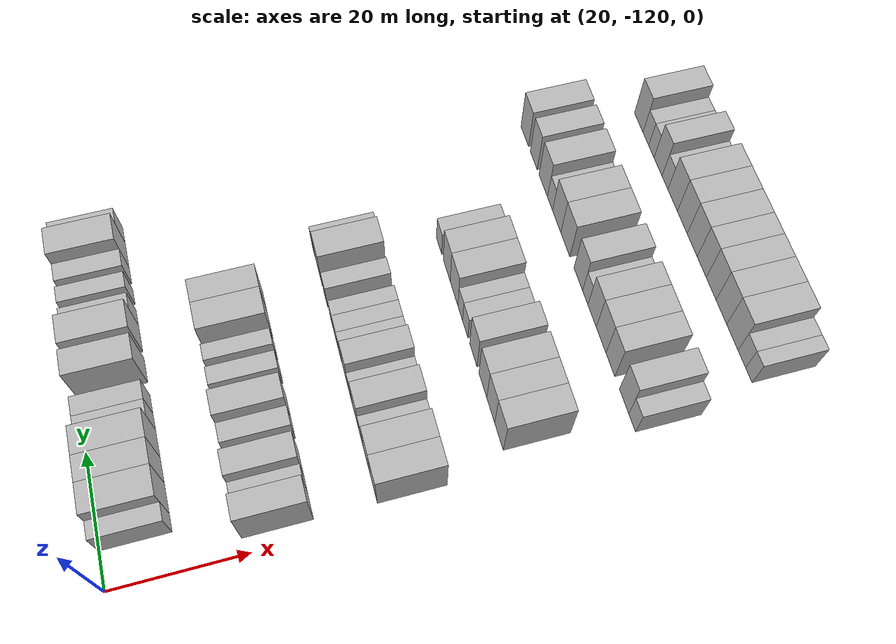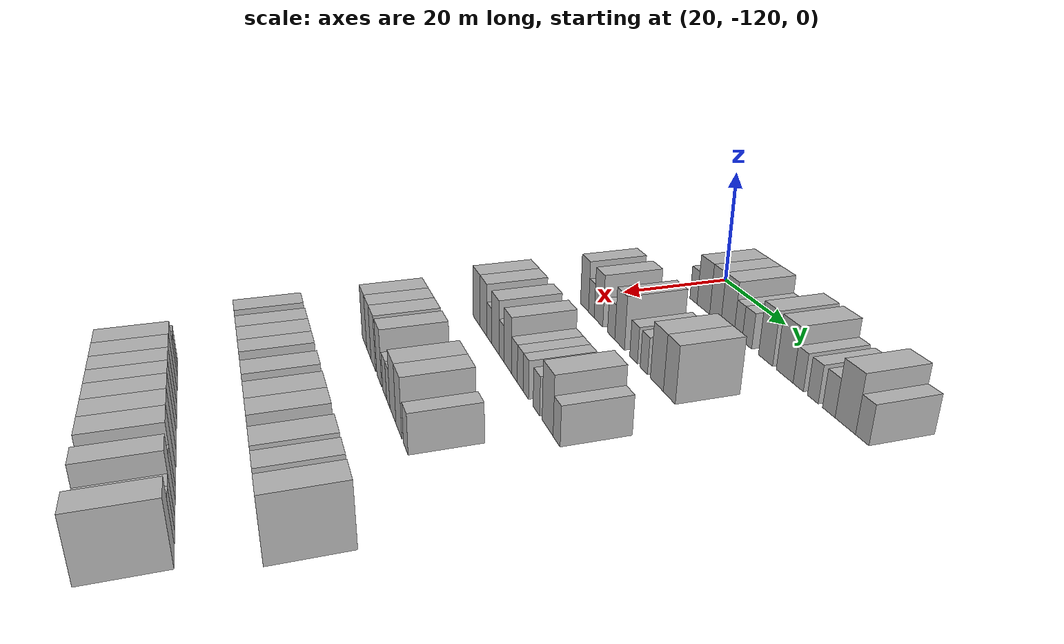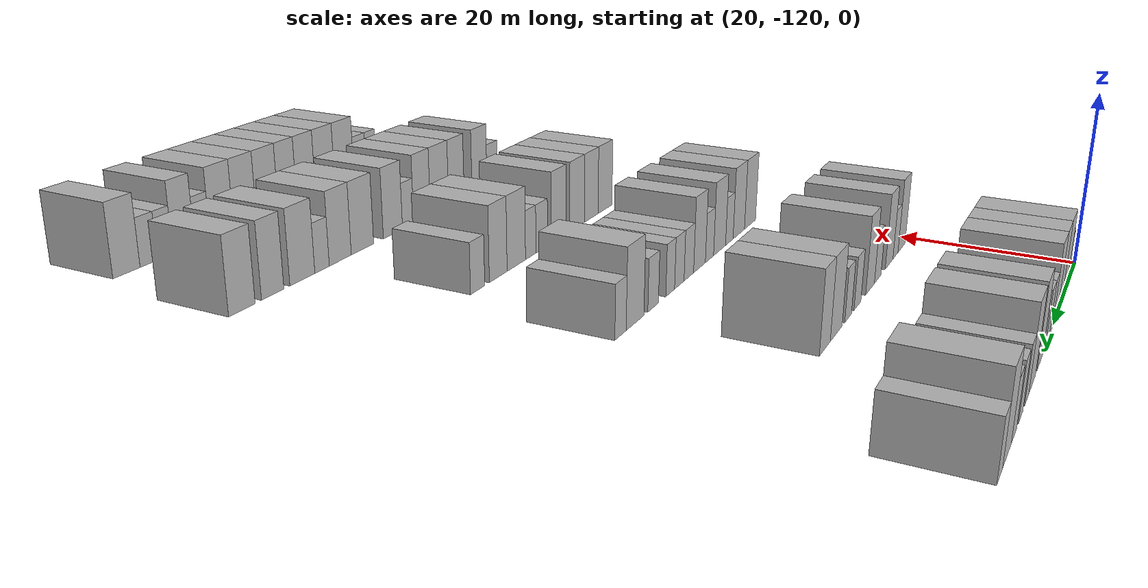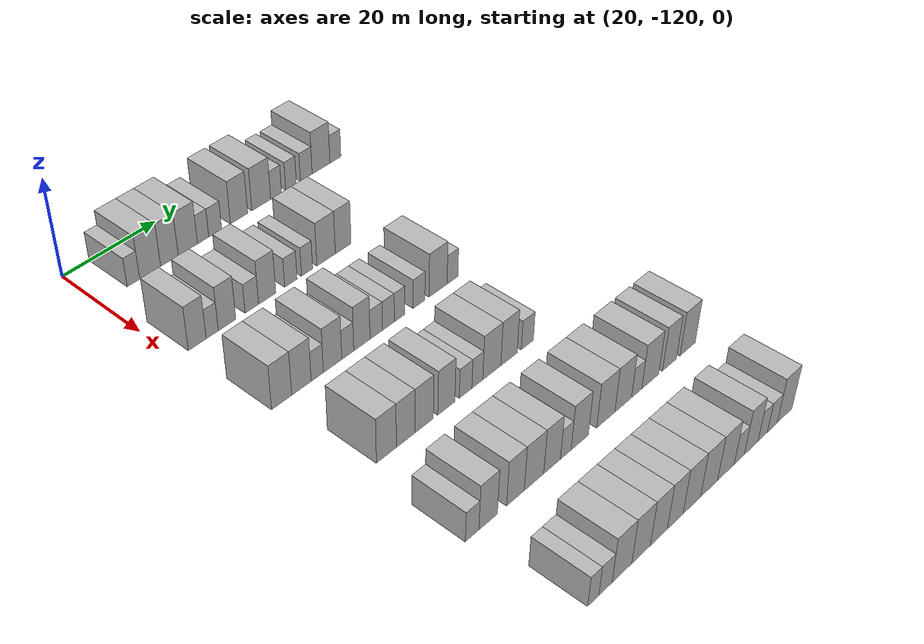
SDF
<sdf version="1.6">
 <world name="default">
  <model name="building_59">
   <static>1</static>
   <pose>25.0000 -113.0709 0 0.000000 0.000000 0.000000</pose>
   <link name="link">
    <pose>0 0 3.00 0 0 0</pose>
    <collision name="collision"><geometry><box><size>10.0000 2.6449 6.0000</size></box></geometry></collision>
    <visual name="visual">
     <cast_shadows>0</cast_shadows>
     <geometry><box><size>10.0000 2.6449 6.0000</size></box></geometry>
     <material>
      <script>
       <uri>model://HANNAS_wall/materials/scripts</uri>
       <uri>model://HANNAS_wall/materials/textures</uri>
       <name>vrc/HANNAS_wall</name>
      </script>
     </material>
    </visual>
   </link>
  </model>
  <model name="building_60">
   <static>1</static>
   <pose>25.0000 -109.5087 0 0.000000 0.000000 0.000000</pose>
   <link name="link">
    <pose>0 0 4.50 0 0 0</pose>
    <collision name="collision"><geometry><box><size>10.0000 4.4795 9.0000</size></box></geometry></collision>
    <visual name="visual">
     <cast_shadows>0</cast_shadows>
     <geometry><box><size>10.0000 4.4795 9.0000</size></box></geometry>
     <material>
      <script>
       <uri>model://HANNAS_wall/materials/scripts</uri>
       <uri>model://HANNAS_wall/materials/textures</uri>
       <name>vrc/HANNAS_wall</name>
      </script>
     </material>
    </visual>
   </link>
  </model>
  <model name="building_61">
   <static>1</static>
   <pose>25.0000 -105.3540 0 0.000000 0.000000 0.000000</pose>
   <link name="link">
    <pose>0 0 4.50 0 0 0</pose>
    <collision name="collision"><geometry><box><size>10.0000 3.8300 9.0000</size></box></geometry></collision>
    <visual name="visual">
     <cast_shadows>0</cast_shadows>
     <geometry><box><size>10.0000 3.8300 9.0000</size></box></geometry>
     <material>
      <script>
       <uri>model://HANNAS_wall/materials/scripts</uri>
       <uri>model://HANNAS_wall/materials/textures</uri>
       <name>vrc/HANNAS_wall</name>
      </script>
     </material>
    </visual>
   </link>
  </model>
  <model name="building_62">
   <static>1</static>
   <pose>25.0000 -101.3069 0 0.000000 0.000000 0.000000</pose>
   <link name="link">
    <pose>0 0 4.50 0 0 0</pose>
    <collision name="collision"><geometry><box><size>10.0000 4.2642 9.0000</size></box></geometry></collision>
    <visual name="visual">
     <cast_shadows>0</cast_shadows>
     <geometry><box><size>10.0000 4.2642 9.0000</size></box></geometry>
     <material>
      <script>
       <uri>model://HANNAS_wall/materials/scripts</uri>
       <uri>model://HANNAS_wall/materials/textures</uri>
       <name>vrc/HANNAS_wall</name>
      </script>
     </material>
    </visual>
   </link>
  </model>
  <model name="building_63">
   <static>1</static>
   <pose>25.0000 -97.9122 0 0.000000 0.000000 0.000000</pose>
   <link name="link">
    <pose>0 0 3.00 0 0 0</pose>
    <collision name="collision"><geometry><box><size>10.0000 2.5251 6.0000</size></box></geometry></collision>
    <visual name="visual">
     <cast_shadows>0</cast_shadows>
     <geometry><box><size>10.0000 2.5251 6.0000</size></box></geometry>
     <material>
      <script>
       <uri>model://HANNAS_wall/materials/scripts</uri>
       <uri>model://HANNAS_wall/materials/textures</uri>
       <name>vrc/HANNAS_wall</name>
      </script>
     </material>
    </visual>
   </link>
  </model>
  <model name="building_64">
   <static>1</static>
   <pose>25.0000 -95.1780 0 0.000000 0.000000 0.000000</pose>
   <link name="link">
    <pose>0 0 3.00 0 0 0</pose>
    <collision name="collision"><geometry><box><size>10.0000 2.9433 6.0000</size></box></geometry></collision>
    <visual name="visual">
     <cast_shadows>0</cast_shadows>
     <geometry><box><size>10.0000 2.9433 6.0000</size></box></geometry>
     <material>
      <script>
       <uri>model://HANNAS_wall/materials/scripts</uri>
       <uri>model://HANNAS_wall/materials/textures</uri>
       <name>vrc/HANNAS_wall</name>
      </script>
     </material>
    </visual>
   </link>
  </model>
  <model name="building_65">
   <static>1</static>
   <pose>25.0000 -89.6933 0 0.000000 0.000000 0.000000</pose>
   <link name="link">
    <pose>0 0 4.50 0 0 0</pose>
    <collision name="collision"><geometry><box><size>10.0000 4.0262 9.0000</size></box></geometry></collision>
    <visual name="visual">
     <cast_shadows>0</cast_shadows>
     <geometry><box><size>10.0000 4.0262 9.0000</size></box></geometry>
     <material>
      <script>
       <uri>model://HANNAS_wall/materials/scripts</uri>
       <uri>model://HANNAS_wall/materials/textures</uri>
       <name>vrc/HANNAS_wall</name>
      </script>
     </material>
    </visual>
   </link>
  </model>
  <model name="building_66">
   <static>1</static>
   <pose>25.0000 -84.4462 0 0.000000 0.000000 0.000000</pose>
   <link name="link">
    <pose>0 0 4.50 0 0 0</pose>
    <collision name="collision"><geometry><box><size>10.0000 4.4679 9.0000</size></box></geometry></collision>
    <visual name="visual">
     <cast_shadows>0</cast_shadows>
     <geometry><box><size>10.0000 4.4679 9.0000</size></box></geometry>
     <material>
      <script>
       <uri>model://HANNAS_wall/materials/scripts</uri>
       <uri>model://HANNAS_wall/materials/textures</uri>
       <name>vrc/HANNAS_wall</name>
      </script>
     </material>
    </visual>
   </link>
  </model>
  <model name="building_67">
   <static>1</static>
   <pose>25.0000 -80.8997 0 0.000000 0.000000 0.000000</pose>
   <link name="link">
    <pose>0 0 3.00 0 0 0</pose>
    <collision name="collision"><geometry><box><size>10.0000 2.6250 6.0000</size></box></geometry></collision>
    <visual name="visual">
     <cast_shadows>0</cast_shadows>
     <geometry><box><size>10.0000 2.6250 6.0000</size></box></geometry>
     <material>
      <script>
       <uri>model://HANNAS_wall/materials/scripts</uri>
       <uri>model://HANNAS_wall/materials/textures</uri>
       <name>vrc/HANNAS_wall</name>
      </script>
     </material>
    </visual>
   </link>
  </model>
  <model name="building_68">
   <static>1</static>
   <pose>25.0000 -77.2748 0 0.000000 0.000000 0.000000</pose>
   <link name="link">
    <pose>0 0 3.00 0 0 0</pose>
    <collision name="collision"><geometry><box><size>10.0000 2.6249 6.0000</size></box></geometry></collision>
    <visual name="visual">
     <cast_shadows>0</cast_shadows>
     <geometry><box><size>10.0000 2.6249 6.0000</size></box></geometry>
     <material>
      <script>
       <uri>model://HANNAS_wall/materials/scripts</uri>
       <uri>model://HANNAS_wall/materials/textures</uri>
       <name>vrc/HANNAS_wall</name>
      </script>
     </material>
    </visual>
   </link>
  </model>
  <model name="building_69">
   <static>1</static>
   <pose>25.0000 -73.5058 0 0.000000 0.000000 0.000000</pose>
   <link name="link">
    <pose>0 0 3.00 0 0 0</pose>
    <collision name="collision"><geometry><box><size>10.0000 2.9130 6.0000</size></box></geometry></collision>
    <visual name="visual">
     <cast_shadows>0</cast_shadows>
     <geometry><box><size>10.0000 2.9130 6.0000</size></box></geometry>
     <material>
      <script>
       <uri>model://HANNAS_wall/materials/scripts</uri>
       <uri>model://HANNAS_wall/materials/textures</uri>
       <name>vrc/HANNAS_wall</name>
      </script>
     </material>
    </visual>
   </link>
  </model>
  <model name="building_70">
   <static>1</static>
   <pose>25.0000 -69.8031 0 0.000000 0.000000 0.000000</pose>
   <link name="link">
    <pose>0 0 4.50 0 0 0</pose>
    <collision name="collision"><geometry><box><size>10.0000 4.4925 9.0000</size></box></geometry></collision>
    <visual name="visual">
     <cast_shadows>0</cast_shadows>
     <geometry><box><size>10.0000 4.4925 9.0000</size></box></geometry>
     <material>
      <script>
       <uri>model://HANNAS_wall/materials/scripts</uri>
       <uri>model://HANNAS_wall/materials/textures</uri>
       <name>vrc/HANNAS_wall</name>
      </script>
     </material>
    </visual>
   </link>
  </model>
  <model name="building_71">
   <static>1</static>
   <pose>25.0000 -66.1511 0 0.000000 0.000000 0.000000</pose>
   <link name="link">
    <pose>0 0 3.00 0 0 0</pose>
    <collision name="collision"><geometry><box><size>10.0000 2.8115 6.0000</size></box></geometry></collision>
    <visual name="visual">
     <cast_shadows>0</cast_shadows>
     <geometry><box><size>10.0000 2.8115 6.0000</size></box></geometry>
     <material>
      <script>
       <uri>model://HANNAS_wall/materials/scripts</uri>
       <uri>model://HANNAS_wall/materials/textures</uri>
       <name>vrc/HANNAS_wall</name>
      </script>
     </material>
    </visual>
   </link>
  </model>
  <model name="building_225">
   <static>1</static>
   <pose>44.0000 -115.8391 0 0.000000 0.000000 0.000000</pose>
   <link name="link">
    <pose>0 0 4.50 0 0 0</pose>
    <collision name="collision"><geometry><box><size>10.0000 3.7175 9.0000</size></box></geometry></collision>
    <visual name="visual">
     <cast_shadows>0</cast_shadows>
     <geometry><box><size>10.0000 3.7175 9.0000</size></box></geometry>
     <material>
      <script>
       <uri>model://HANNAS_wall/materials/scripts</uri>
       <uri>model://HANNAS_wall/materials/textures</uri>
       <name>vrc/HANNAS_wall</name>
      </script>
     </material>
    </visual>
   </link>
  </model>
  <model name="building_226">
   <static>1</static>
   <pose>44.0000 -112.7089 0 0.000000 0.000000 0.000000</pose>
   <link name="link">
    <pose>0 0 3.00 0 0 0</pose>
    <collision name="collision"><geometry><box><size>10.0000 2.5429 6.0000</size></box></geometry></collision>
    <visual name="visual">
     <cast_shadows>0</cast_shadows>
     <geometry><box><size>10.0000 2.5429 6.0000</size></box></geometry>
     <material>
      <script>
       <uri>model://HANNAS_wall/materials/scripts</uri>
       <uri>model://HANNAS_wall/materials/textures</uri>
       <name>vrc/HANNAS_wall</name>
      </script>
     </material>
    </visual>
   </link>
  </model>
  <model name="building_227">
   <static>1</static>
   <pose>44.0000 -109.5735 0 0.000000 0.000000 0.000000</pose>
   <link name="link">
    <pose>0 0 4.50 0 0 0</pose>
    <collision name="collision"><geometry><box><size>10.0000 3.7279 9.0000</size></box></geometry></collision>
    <visual name="visual">
     <cast_shadows>0</cast_shadows>
     <geometry><box><size>10.0000 3.7279 9.0000</size></box></geometry>
     <material>
      <script>
       <uri>model://HANNAS_wall/materials/scripts</uri>
       <uri>model://HANNAS_wall/materials/textures</uri>
       <name>vrc/HANNAS_wall</name>
      </script>
     </material>
    </visual>
   </link>
  </model>
  <model name="building_228">
   <static>1</static>
   <pose>44.0000 -104.2325 0 0.000000 0.000000 0.000000</pose>
   <link name="link">
    <pose>0 0 3.00 0 0 0</pose>
    <collision name="collision"><geometry><box><size>10.0000 2.9539 6.0000</size></box></geometry></collision>
    <visual name="visual">
     <cast_shadows>0</cast_shadows>
     <geometry><box><size>10.0000 2.9539 6.0000</size></box></geometry>
     <material>
      <script>
       <uri>model://HANNAS_wall/materials/scripts</uri>
       <uri>model://HANNAS_wall/materials/textures</uri>
       <name>vrc/HANNAS_wall</name>
      </script>
     </material>
    </visual>
   </link>
  </model>
  <model name="building_229">
   <static>1</static>
   <pose>44.0000 -100.8487 0 0.000000 0.000000 0.000000</pose>
   <link name="link">
    <pose>0 0 4.50 0 0 0</pose>
    <collision name="collision"><geometry><box><size>10.0000 3.8137 9.0000</size></box></geometry></collision>
    <visual name="visual">
     <cast_shadows>0</cast_shadows>
     <geometry><box><size>10.0000 3.8137 9.0000</size></box></geometry>
     <material>
      <script>
       <uri>model://HANNAS_wall/materials/scripts</uri>
       <uri>model://HANNAS_wall/materials/textures</uri>
       <name>vrc/HANNAS_wall</name>
      </script>
     </material>
    </visual>
   </link>
  </model>
  <model name="building_230">
   <static>1</static>
   <pose>44.0000 -95.5404 0 0.000000 0.000000 0.000000</pose>
   <link name="link">
    <pose>0 0 3.00 0 0 0</pose>
    <collision name="collision"><geometry><box><size>10.0000 2.8029 6.0000</size></box></geometry></collision>
    <visual name="visual">
     <cast_shadows>0</cast_shadows>
     <geometry><box><size>10.0000 2.8029 6.0000</size></box></geometry>
     <material>
      <script>
       <uri>model://HANNAS_wall/materials/scripts</uri>
       <uri>model://HANNAS_wall/materials/textures</uri>
       <name>vrc/HANNAS_wall</name>
      </script>
     </material>
    </visual>
   </link>
  </model>
  <model name="building_231">
   <static>1</static>
   <pose>44.0000 -91.8494 0 0.000000 0.000000 0.000000</pose>
   <link name="link">
    <pose>0 0 3.00 0 0 0</pose>
    <collision name="collision"><geometry><box><size>10.0000 2.5790 6.0000</size></box></geometry></collision>
    <visual name="visual">
     <cast_shadows>0</cast_shadows>
     <geometry><box><size>10.0000 2.5790 6.0000</size></box></geometry>
     <material>
      <script>
       <uri>model://HANNAS_wall/materials/scripts</uri>
       <uri>model://HANNAS_wall/materials/textures</uri>
       <name>vrc/HANNAS_wall</name>
      </script>
     </material>
    </visual>
   </link>
  </model>
  <model name="building_232">
   <static>1</static>
   <pose>44.0000 -87.3892 0 0.000000 0.000000 0.000000</pose>
   <link name="link">
    <pose>0 0 4.50 0 0 0</pose>
    <collision name="collision"><geometry><box><size>10.0000 4.3413 9.0000</size></box></geometry></collision>
    <visual name="visual">
     <cast_shadows>0</cast_shadows>
     <geometry><box><size>10.0000 4.3413 9.0000</size></box></geometry>
     <material>
      <script>
       <uri>model://HANNAS_wall/materials/scripts</uri>
       <uri>model://HANNAS_wall/materials/textures</uri>
       <name>vrc/HANNAS_wall</name>
      </script>
     </material>
    </visual>
   </link>
  </model>
  <model name="building_233">
   <static>1</static>
   <pose>44.0000 -83.3372 0 0.000000 0.000000 0.000000</pose>
   <link name="link">
    <pose>0 0 4.50 0 0 0</pose>
    <collision name="collision"><geometry><box><size>10.0000 3.7626 9.0000</size></box></geometry></collision>
    <visual name="visual">
     <cast_shadows>0</cast_shadows>
     <geometry><box><size>10.0000 3.7626 9.0000</size></box></geometry>
     <material>
      <script>
       <uri>model://HANNAS_wall/materials/scripts</uri>
       <uri>model://HANNAS_wall/materials/textures</uri>
       <name>vrc/HANNAS_wall</name>
      </script>
     </material>
    </visual>
   </link>
  </model>
  <model name="building_402">
   <static>1</static>
   <pose>63.0000 -115.6997 0 0.000000 0.000000 0.000000</pose>
   <link name="link">
    <pose>0 0 4.50 0 0 0</pose>
    <collision name="collision"><geometry><box><size>10.0000 4.1666 9.0000</size></box></geometry></collision>
    <visual name="visual">
     <cast_shadows>0</cast_shadows>
     <geometry><box><size>10.0000 4.1666 9.0000</size></box></geometry>
     <material>
      <script>
       <uri>model://HANNAS_wall/materials/scripts</uri>
       <uri>model://HANNAS_wall/materials/textures</uri>
       <name>vrc/HANNAS_wall</name>
      </script>
     </material>
    </visual>
   </link>
  </model>
  <model name="building_403">
   <static>1</static>
   <pose>63.0000 -111.5538 0 0.000000 0.000000 0.000000</pose>
   <link name="link">
    <pose>0 0 4.50 0 0 0</pose>
    <collision name="collision"><geometry><box><size>10.0000 4.1251 9.0000</size></box></geometry></collision>
    <visual name="visual">
     <cast_shadows>0</cast_shadows>
     <geometry><box><size>10.0000 4.1251 9.0000</size></box></geometry>
     <material>
      <script>
       <uri>model://HANNAS_wall/materials/scripts</uri>
       <uri>model://HANNAS_wall/materials/textures</uri>
       <name>vrc/HANNAS_wall</name>
      </script>
     </material>
    </visual>
   </link>
  </model>
  <model name="building_404">
   <static>1</static>
   <pose>63.0000 -108.1817 0 0.000000 0.000000 0.000000</pose>
   <link name="link">
    <pose>0 0 3.00 0 0 0</pose>
    <collision name="collision"><geometry><box><size>10.0000 2.6191 6.0000</size></box></geometry></collision>
    <visual name="visual">
     <cast_shadows>0</cast_shadows>
     <geometry><box><size>10.0000 2.6191 6.0000</size></box></geometry>
     <material>
      <script>
       <uri>model://HANNAS_wall/materials/scripts</uri>
       <uri>model://HANNAS_wall/materials/textures</uri>
       <name>vrc/HANNAS_wall</name>
      </script>
     </material>
    </visual>
   </link>
  </model>
  <model name="building_405">
   <static>1</static>
   <pose>63.0000 -104.8645 0 0.000000 0.000000 0.000000</pose>
   <link name="link">
    <pose>0 0 4.50 0 0 0</pose>
    <collision name="collision"><geometry><box><size>10.0000 4.0153 9.0000</size></box></geometry></collision>
    <visual name="visual">
     <cast_shadows>0</cast_shadows>
     <geometry><box><size>10.0000 4.0153 9.0000</size></box></geometry>
     <material>
      <script>
       <uri>model://HANNAS_wall/materials/scripts</uri>
       <uri>model://HANNAS_wall/materials/textures</uri>
       <name>vrc/HANNAS_wall</name>
      </script>
     </material>
    </visual>
   </link>
  </model>
  <model name="building_406">
   <static>1</static>
   <pose>63.0000 -101.5328 0 0.000000 0.000000 0.000000</pose>
   <link name="link">
    <pose>0 0 3.00 0 0 0</pose>
    <collision name="collision"><geometry><box><size>10.0000 2.6483 6.0000</size></box></geometry></collision>
    <visual name="visual">
     <cast_shadows>0</cast_shadows>
     <geometry><box><size>10.0000 2.6483 6.0000</size></box></geometry>
     <material>
      <script>
       <uri>model://HANNAS_wall/materials/scripts</uri>
       <uri>model://HANNAS_wall/materials/textures</uri>
       <name>vrc/HANNAS_wall</name>
      </script>
     </material>
    </visual>
   </link>
  </model>
  <model name="building_407">
   <static>1</static>
   <pose>63.0000 -98.3850 0 0.000000 0.000000 0.000000</pose>
   <link name="link">
    <pose>0 0 4.50 0 0 0</pose>
    <collision name="collision"><geometry><box><size>10.0000 3.6473 9.0000</size></box></geometry></collision>
    <visual name="visual">
     <cast_shadows>0</cast_shadows>
     <geometry><box><size>10.0000 3.6473 9.0000</size></box></geometry>
     <material>
      <script>
       <uri>model://HANNAS_wall/materials/scripts</uri>
       <uri>model://HANNAS_wall/materials/textures</uri>
       <name>vrc/HANNAS_wall</name>
      </script>
     </material>
    </visual>
   </link>
  </model>
  <model name="building_408">
   <static>1</static>
   <pose>63.0000 -95.1314 0 0.000000 0.000000 0.000000</pose>
   <link name="link">
    <pose>0 0 3.00 0 0 0</pose>
    <collision name="collision"><geometry><box><size>10.0000 2.8600 6.0000</size></box></geometry></collision>
    <visual name="visual">
     <cast_shadows>0</cast_shadows>
     <geometry><box><size>10.0000 2.8600 6.0000</size></box></geometry>
     <material>
      <script>
       <uri>model://HANNAS_wall/materials/scripts</uri>
       <uri>model://HANNAS_wall/materials/textures</uri>
       <name>vrc/HANNAS_wall</name>
      </script>
     </material>
    </visual>
   </link>
  </model>
  <model name="building_409">
   <static>1</static>
   <pose>63.0000 -92.3393 0 0.000000 0.000000 0.000000</pose>
   <link name="link">
    <pose>0 0 3.00 0 0 0</pose>
    <collision name="collision"><geometry><box><size>10.0000 2.7242 6.0000</size></box></geometry></collision>
    <visual name="visual">
     <cast_shadows>0</cast_shadows>
     <geometry><box><size>10.0000 2.7242 6.0000</size></box></geometry>
     <material>
      <script>
       <uri>model://HANNAS_wall/materials/scripts</uri>
       <uri>model://HANNAS_wall/materials/textures</uri>
       <name>vrc/HANNAS_wall</name>
      </script>
     </material>
    </visual>
   </link>
  </model>
  <model name="building_410">
   <static>1</static>
   <pose>63.0000 -89.7533 0 0.000000 0.000000 0.000000</pose>
   <link name="link">
    <pose>0 0 3.00 0 0 0</pose>
    <collision name="collision"><geometry><box><size>10.0000 2.4479 6.0000</size></box></geometry></collision>
    <visual name="visual">
     <cast_shadows>0</cast_shadows>
     <geometry><box><size>10.0000 2.4479 6.0000</size></box></geometry>
     <material>
      <script>
       <uri>model://HANNAS_wall/materials/scripts</uri>
       <uri>model://HANNAS_wall/materials/textures</uri>
       <name>vrc/HANNAS_wall</name>
      </script>
     </material>
    </visual>
   </link>
  </model>
  <model name="building_411">
   <static>1</static>
   <pose>63.0000 -85.1316 0 0.000000 0.000000 0.000000</pose>
   <link name="link">
    <pose>0 0 3.00 0 0 0</pose>
    <collision name="collision"><geometry><box><size>10.0000 2.7955 6.0000</size></box></geometry></collision>
    <visual name="visual">
     <cast_shadows>0</cast_shadows>
     <geometry><box><size>10.0000 2.7955 6.0000</size></box></geometry>
     <material>
      <script>
       <uri>model://HANNAS_wall/materials/scripts</uri>
       <uri>model://HANNAS_wall/materials/textures</uri>
       <name>vrc/HANNAS_wall</name>
      </script>
     </material>
    </visual>
   </link>
  </model>
  <model name="building_412">
   <static>1</static>
   <pose>63.0000 -80.5364 0 0.000000 0.000000 0.000000</pose>
   <link name="link">
    <pose>0 0 4.50 0 0 0</pose>
    <collision name="collision"><geometry><box><size>10.0000 4.3949 9.0000</size></box></geometry></collision>
    <visual name="visual">
     <cast_shadows>0</cast_shadows>
     <geometry><box><size>10.0000 4.3949 9.0000</size></box></geometry>
     <material>
      <script>
       <uri>model://HANNAS_wall/materials/scripts</uri>
       <uri>model://HANNAS_wall/materials/textures</uri>
       <name>vrc/HANNAS_wall</name>
      </script>
     </material>
    </visual>
   </link>
  </model>
  <model name="building_413">
   <static>1</static>
   <pose>63.0000 -77.0027 0 0.000000 0.000000 0.000000</pose>
   <link name="link">
    <pose>0 0 3.00 0 0 0</pose>
    <collision name="collision"><geometry><box><size>10.0000 2.6724 6.0000</size></box></geometry></collision>
    <visual name="visual">
     <cast_shadows>0</cast_shadows>
     <geometry><box><size>10.0000 2.6724 6.0000</size></box></geometry>
     <material>
      <script>
       <uri>model://HANNAS_wall/materials/scripts</uri>
       <uri>model://HANNAS_wall/materials/textures</uri>
       <name>vrc/HANNAS_wall</name>
      </script>
     </material>
    </visual>
   </link>
  </model>
  <model name="building_583">
   <static>1</static>
   <pose>82.0000 -112.8716 0 0.000000 0.000000 0.000000</pose>
   <link name="link">
    <pose>0 0 4.50 0 0 0</pose>
    <collision name="collision"><geometry><box><size>10.0000 4.1861 9.0000</size></box></geometry></collision>
    <visual name="visual">
     <cast_shadows>0</cast_shadows>
     <geometry><box><size>10.0000 4.1861 9.0000</size></box></geometry>
     <material>
      <script>
       <uri>model://HANNAS_wall/materials/scripts</uri>
       <uri>model://HANNAS_wall/materials/textures</uri>
       <name>vrc/HANNAS_wall</name>
      </script>
     </material>
    </visual>
   </link>
  </model>
  <model name="building_584">
   <static>1</static>
   <pose>82.0000 -108.7779 0 0.000000 0.000000 0.000000</pose>
   <link name="link">
    <pose>0 0 4.50 0 0 0</pose>
    <collision name="collision"><geometry><box><size>10.0000 4.0014 9.0000</size></box></geometry></collision>
    <visual name="visual">
     <cast_shadows>0</cast_shadows>
     <geometry><box><size>10.0000 4.0014 9.0000</size></box></geometry>
     <material>
      <script>
       <uri>model://HANNAS_wall/materials/scripts</uri>
       <uri>model://HANNAS_wall/materials/textures</uri>
       <name>vrc/HANNAS_wall</name>
      </script>
     </material>
    </visual>
   </link>
  </model>
  <model name="building_585">
   <static>1</static>
   <pose>82.0000 -104.7562 0 0.000000 0.000000 0.000000</pose>
   <link name="link">
    <pose>0 0 4.50 0 0 0</pose>
    <collision name="collision"><geometry><box><size>10.0000 4.0419 9.0000</size></box></geometry></collision>
    <visual name="visual">
     <cast_shadows>0</cast_shadows>
     <geometry><box><size>10.0000 4.0419 9.0000</size></box></geometry>
     <material>
      <script>
       <uri>model://HANNAS_wall/materials/scripts</uri>
       <uri>model://HANNAS_wall/materials/textures</uri>
       <name>vrc/HANNAS_wall</name>
      </script>
     </material>
    </visual>
   </link>
  </model>
  <model name="building_586">
   <static>1</static>
   <pose>82.0000 -99.8095 0 0.000000 0.000000 0.000000</pose>
   <link name="link">
    <pose>0 0 4.50 0 0 0</pose>
    <collision name="collision"><geometry><box><size>10.0000 3.8514 9.0000</size></box></geometry></collision>
    <visual name="visual">
     <cast_shadows>0</cast_shadows>
     <geometry><box><size>10.0000 3.8514 9.0000</size></box></geometry>
     <material>
      <script>
       <uri>model://HANNAS_wall/materials/scripts</uri>
       <uri>model://HANNAS_wall/materials/textures</uri>
       <name>vrc/HANNAS_wall</name>
      </script>
     </material>
    </visual>
   </link>
  </model>
  <model name="building_587">
   <static>1</static>
   <pose>82.0000 -95.4429 0 0.000000 0.000000 0.000000</pose>
   <link name="link">
    <pose>0 0 3.00 0 0 0</pose>
    <collision name="collision"><geometry><box><size>10.0000 2.8818 6.0000</size></box></geometry></collision>
    <visual name="visual">
     <cast_shadows>0</cast_shadows>
     <geometry><box><size>10.0000 2.8818 6.0000</size></box></geometry>
     <material>
      <script>
       <uri>model://HANNAS_wall/materials/scripts</uri>
       <uri>model://HANNAS_wall/materials/textures</uri>
       <name>vrc/HANNAS_wall</name>
      </script>
     </material>
    </visual>
   </link>
  </model>
  <model name="building_588">
   <static>1</static>
   <pose>82.0000 -92.7356 0 0.000000 0.000000 0.000000</pose>
   <link name="link">
    <pose>0 0 3.00 0 0 0</pose>
    <collision name="collision"><geometry><box><size>10.0000 2.5328 6.0000</size></box></geometry></collision>
    <visual name="visual">
     <cast_shadows>0</cast_shadows>
     <geometry><box><size>10.0000 2.5328 6.0000</size></box></geometry>
     <material>
      <script>
       <uri>model://HANNAS_wall/materials/scripts</uri>
       <uri>model://HANNAS_wall/materials/textures</uri>
       <name>vrc/HANNAS_wall</name>
      </script>
     </material>
    </visual>
   </link>
  </model>
  <model name="building_589">
   <static>1</static>
   <pose>82.0000 -89.3349 0 0.000000 0.000000 0.000000</pose>
   <link name="link">
    <pose>0 0 4.50 0 0 0</pose>
    <collision name="collision"><geometry><box><size>10.0000 4.2684 9.0000</size></box></geometry></collision>
    <visual name="visual">
     <cast_shadows>0</cast_shadows>
     <geometry><box><size>10.0000 4.2684 9.0000</size></box></geometry>
     <material>
      <script>
       <uri>model://HANNAS_wall/materials/scripts</uri>
       <uri>model://HANNAS_wall/materials/textures</uri>
       <name>vrc/HANNAS_wall</name>
      </script>
     </material>
    </visual>
   </link>
  </model>
  <model name="building_590">
   <static>1</static>
   <pose>82.0000 -85.2344 0 0.000000 0.000000 0.000000</pose>
   <link name="link">
    <pose>0 0 4.50 0 0 0</pose>
    <collision name="collision"><geometry><box><size>10.0000 3.9326 9.0000</size></box></geometry></collision>
    <visual name="visual">
     <cast_shadows>0</cast_shadows>
     <geometry><box><size>10.0000 3.9326 9.0000</size></box></geometry>
     <material>
      <script>
       <uri>model://HANNAS_wall/materials/scripts</uri>
       <uri>model://HANNAS_wall/materials/textures</uri>
       <name>vrc/HANNAS_wall</name>
      </script>
     </material>
    </visual>
   </link>
  </model>
  <model name="building_591">
   <static>1</static>
   <pose>82.0000 -80.7839 0 0.000000 0.000000 0.000000</pose>
   <link name="link">
    <pose>0 0 3.00 0 0 0</pose>
    <collision name="collision"><geometry><box><size>10.0000 2.9685 6.0000</size></box></geometry></collision>
    <visual name="visual">
     <cast_shadows>0</cast_shadows>
     <geometry><box><size>10.0000 2.9685 6.0000</size></box></geometry>
     <material>
      <script>
       <uri>model://HANNAS_wall/materials/scripts</uri>
       <uri>model://HANNAS_wall/materials/textures</uri>
       <name>vrc/HANNAS_wall</name>
      </script>
     </material>
    </visual>
   </link>
  </model>
  <model name="building_753">
   <static>1</static>
   <pose>101.0000 -115.8060 0 0.000000 0.000000 0.000000</pose>
   <link name="link">
    <pose>0 0 3.00 0 0 0</pose>
    <collision name="collision"><geometry><box><size>10.0000 2.8496 6.0000</size></box></geometry></collision>
    <visual name="visual">
     <cast_shadows>0</cast_shadows>
     <geometry><box><size>10.0000 2.8496 6.0000</size></box></geometry>
     <material>
      <script>
       <uri>model://HANNAS_wall/materials/scripts</uri>
       <uri>model://HANNAS_wall/materials/textures</uri>
       <name>vrc/HANNAS_wall</name>
      </script>
     </material>
    </visual>
   </link>
  </model>
  <model name="building_754">
   <static>1</static>
   <pose>101.0000 -112.4113 0 0.000000 0.000000 0.000000</pose>
   <link name="link">
    <pose>0 0 4.50 0 0 0</pose>
    <collision name="collision"><geometry><box><size>10.0000 3.9398 9.0000</size></box></geometry></collision>
    <visual name="visual">
     <cast_shadows>0</cast_shadows>
     <geometry><box><size>10.0000 3.9398 9.0000</size></box></geometry>
     <material>
      <script>
       <uri>model://HANNAS_wall/materials/scripts</uri>
       <uri>model://HANNAS_wall/materials/textures</uri>
       <name>vrc/HANNAS_wall</name>
      </script>
     </material>
    </visual>
   </link>
  </model>
  <model name="building_755">
   <static>1</static>
   <pose>101.0000 -106.5028 0 0.000000 0.000000 0.000000</pose>
   <link name="link">
    <pose>0 0 4.50 0 0 0</pose>
    <collision name="collision"><geometry><box><size>10.0000 3.8773 9.0000</size></box></geometry></collision>
    <visual name="visual">
     <cast_shadows>0</cast_shadows>
     <geometry><box><size>10.0000 3.8773 9.0000</size></box></geometry>
     <material>
      <script>
       <uri>model://HANNAS_wall/materials/scripts</uri>
       <uri>model://HANNAS_wall/materials/textures</uri>
       <name>vrc/HANNAS_wall</name>
      </script>
     </material>
    </visual>
   </link>
  </model>
  <model name="building_756">
   <static>1</static>
   <pose>101.0000 -102.3799 0 0.000000 0.000000 0.000000</pose>
   <link name="link">
    <pose>0 0 4.50 0 0 0</pose>
    <collision name="collision"><geometry><box><size>10.0000 4.3685 9.0000</size></box></geometry></collision>
    <visual name="visual">
     <cast_shadows>0</cast_shadows>
     <geometry><box><size>10.0000 4.3685 9.0000</size></box></geometry>
     <material>
      <script>
       <uri>model://HANNAS_wall/materials/scripts</uri>
       <uri>model://HANNAS_wall/materials/textures</uri>
       <name>vrc/HANNAS_wall</name>
      </script>
     </material>
    </visual>
   </link>
  </model>
  <model name="building_757">
   <static>1</static>
   <pose>101.0000 -98.2800 0 0.000000 0.000000 0.000000</pose>
   <link name="link">
    <pose>0 0 4.50 0 0 0</pose>
    <collision name="collision"><geometry><box><size>10.0000 3.8312 9.0000</size></box></geometry></collision>
    <visual name="visual">
     <cast_shadows>0</cast_shadows>
     <geometry><box><size>10.0000 3.8312 9.0000</size></box></geometry>
     <material>
      <script>
       <uri>model://HANNAS_wall/materials/scripts</uri>
       <uri>model://HANNAS_wall/materials/textures</uri>
       <name>vrc/HANNAS_wall</name>
      </script>
     </material>
    </visual>
   </link>
  </model>
  <model name="building_758">
   <static>1</static>
   <pose>101.0000 -95.1183 0 0.000000 0.000000 0.000000</pose>
   <link name="link">
    <pose>0 0 3.00 0 0 0</pose>
    <collision name="collision"><geometry><box><size>10.0000 2.4922 6.0000</size></box></geometry></collision>
    <visual name="visual">
     <cast_shadows>0</cast_shadows>
     <geometry><box><size>10.0000 2.4922 6.0000</size></box></geometry>
     <material>
      <script>
       <uri>model://HANNAS_wall/materials/scripts</uri>
       <uri>model://HANNAS_wall/materials/textures</uri>
       <name>vrc/HANNAS_wall</name>
      </script>
     </material>
    </visual>
   </link>
  </model>
  <model name="building_759">
   <static>1</static>
   <pose>101.0000 -91.8290 0 0.000000 0.000000 0.000000</pose>
   <link name="link">
    <pose>0 0 4.50 0 0 0</pose>
    <collision name="collision"><geometry><box><size>10.0000 4.0863 9.0000</size></box></geometry></collision>
    <visual name="visual">
     <cast_shadows>0</cast_shadows>
     <geometry><box><size>10.0000 4.0863 9.0000</size></box></geometry>
     <material>
      <script>
       <uri>model://HANNAS_wall/materials/scripts</uri>
       <uri>model://HANNAS_wall/materials/textures</uri>
       <name>vrc/HANNAS_wall</name>
      </script>
     </material>
    </visual>
   </link>
  </model>
  <model name="building_760">
   <static>1</static>
   <pose>101.0000 -85.5643 0 0.000000 0.000000 0.000000</pose>
   <link name="link">
    <pose>0 0 4.50 0 0 0</pose>
    <collision name="collision"><geometry><box><size>10.0000 4.4431 9.0000</size></box></geometry></collision>
    <visual name="visual">
     <cast_shadows>0</cast_shadows>
     <geometry><box><size>10.0000 4.4431 9.0000</size></box></geometry>
     <material>
      <script>
       <uri>model://HANNAS_wall/materials/scripts</uri>
       <uri>model://HANNAS_wall/materials/textures</uri>
       <name>vrc/HANNAS_wall</name>
      </script>
     </material>
    </visual>
   </link>
  </model>
  <model name="building_761">
   <static>1</static>
   <pose>101.0000 -81.2622 0 0.000000 0.000000 0.000000</pose>
   <link name="link">
    <pose>0 0 4.50 0 0 0</pose>
    <collision name="collision"><geometry><box><size>10.0000 4.1611 9.0000</size></box></geometry></collision>
    <visual name="visual">
     <cast_shadows>0</cast_shadows>
     <geometry><box><size>10.0000 4.1611 9.0000</size></box></geometry>
     <material>
      <script>
       <uri>model://HANNAS_wall/materials/scripts</uri>
       <uri>model://HANNAS_wall/materials/textures</uri>
       <name>vrc/HANNAS_wall</name>
      </script>
     </material>
    </visual>
   </link>
  </model>
  <model name="building_762">
   <static>1</static>
   <pose>101.0000 -77.8725 0 0.000000 0.000000 0.000000</pose>
   <link name="link">
    <pose>0 0 3.00 0 0 0</pose>
    <collision name="collision"><geometry><box><size>10.0000 2.6184 6.0000</size></box></geometry></collision>
    <visual name="visual">
     <cast_shadows>0</cast_shadows>
     <geometry><box><size>10.0000 2.6184 6.0000</size></box></geometry>
     <material>
      <script>
       <uri>model://HANNAS_wall/materials/scripts</uri>
       <uri>model://HANNAS_wall/materials/textures</uri>
       <name>vrc/HANNAS_wall</name>
      </script>
     </material>
    </visual>
   </link>
  </model>
  <model name="building_763">
   <static>1</static>
   <pose>101.0000 -74.3894 0 0.000000 0.000000 0.000000</pose>
   <link name="link">
    <pose>0 0 4.50 0 0 0</pose>
    <collision name="collision"><geometry><box><size>10.0000 4.3477 9.0000</size></box></geometry></collision>
    <visual name="visual">
     <cast_shadows>0</cast_shadows>
     <geometry><box><size>10.0000 4.3477 9.0000</size></box></geometry>
     <material>
      <script>
       <uri>model://HANNAS_wall/materials/scripts</uri>
       <uri>model://HANNAS_wall/materials/textures</uri>
       <name>vrc/HANNAS_wall</name>
      </script>
     </material>
    </visual>
   </link>
  </model>
  <model name="building_764">
   <static>1</static>
   <pose>101.0000 -69.3846 0 0.000000 0.000000 0.000000</pose>
   <link name="link">
    <pose>0 0 4.50 0 0 0</pose>
    <collision name="collision"><geometry><box><size>10.0000 3.6620 9.0000</size></box></geometry></collision>
    <visual name="visual">
     <cast_shadows>0</cast_shadows>
     <geometry><box><size>10.0000 3.6620 9.0000</size></box></geometry>
     <material>
      <script>
       <uri>model://HANNAS_wall/materials/scripts</uri>
       <uri>model://HANNAS_wall/materials/textures</uri>
       <name>vrc/HANNAS_wall</name>
      </script>
     </material>
    </visual>
   </link>
  </model>
  <model name="building_765">
   <static>1</static>
   <pose>101.0000 -64.5102 0 0.000000 0.000000 0.000000</pose>
   <link name="link">
    <pose>0 0 4.50 0 0 0</pose>
    <collision name="collision"><geometry><box><size>10.0000 4.0869 9.0000</size></box></geometry></collision>
    <visual name="visual">
     <cast_shadows>0</cast_shadows>
     <geometry><box><size>10.0000 4.0869 9.0000</size></box></geometry>
     <material>
      <script>
       <uri>model://HANNAS_wall/materials/scripts</uri>
       <uri>model://HANNAS_wall/materials/textures</uri>
       <name>vrc/HANNAS_wall</name>
      </script>
     </material>
    </visual>
   </link>
  </model>
  <model name="building_931">
   <static>1</static>
   <pose>120.0000 -113.3242 0 0.000000 0.000000 0.000000</pose>
   <link name="link">
    <pose>0 0 3.00 0 0 0</pose>
    <collision name="collision"><geometry><box><size>10.0000 2.4076 6.0000</size></box></geometry></collision>
    <visual name="visual">
     <cast_shadows>0</cast_shadows>
     <geometry><box><size>10.0000 2.4076 6.0000</size></box></geometry>
     <material>
      <script>
       <uri>model://HANNAS_wall/materials/scripts</uri>
       <uri>model://HANNAS_wall/materials/textures</uri>
       <name>vrc/HANNAS_wall</name>
      </script>
     </material>
    </visual>
   </link>
  </model>
  <model name="building_932">
   <static>1</static>
   <pose>120.0000 -110.6700 0 0.000000 0.000000 0.000000</pose>
   <link name="link">
    <pose>0 0 3.00 0 0 0</pose>
    <collision name="collision"><geometry><box><size>10.0000 2.9009 6.0000</size></box></geometry></collision>
    <visual name="visual">
     <cast_shadows>0</cast_shadows>
     <geometry><box><size>10.0000 2.9009 6.0000</size></box></geometry>
     <material>
      <script>
       <uri>model://HANNAS_wall/materials/scripts</uri>
       <uri>model://HANNAS_wall/materials/textures</uri>
       <name>vrc/HANNAS_wall</name>
      </script>
     </material>
    </visual>
   </link>
  </model>
  <model name="building_933">
   <static>1</static>
   <pose>120.0000 -107.0295 0 0.000000 0.000000 0.000000</pose>
   <link name="link">
    <pose>0 0 4.50 0 0 0</pose>
    <collision name="collision"><geometry><box><size>10.0000 4.3802 9.0000</size></box></geometry></collision>
    <visual name="visual">
     <cast_shadows>0</cast_shadows>
     <geometry><box><size>10.0000 4.3802 9.0000</size></box></geometry>
     <material>
      <script>
       <uri>model://HANNAS_wall/materials/scripts</uri>
       <uri>model://HANNAS_wall/materials/textures</uri>
       <name>vrc/HANNAS_wall</name>
      </script>
     </material>
    </visual>
   </link>
  </model>
  <model name="building_934">
   <static>1</static>
   <pose>120.0000 -102.7183 0 0.000000 0.000000 0.000000</pose>
   <link name="link">
    <pose>0 0 4.50 0 0 0</pose>
    <collision name="collision"><geometry><box><size>10.0000 4.2422 9.0000</size></box></geometry></collision>
    <visual name="visual">
     <cast_shadows>0</cast_shadows>
     <geometry><box><size>10.0000 4.2422 9.0000</size></box></geometry>
     <material>
      <script>
       <uri>model://HANNAS_wall/materials/scripts</uri>
       <uri>model://HANNAS_wall/materials/textures</uri>
       <name>vrc/HANNAS_wall</name>
      </script>
     </material>
    </visual>
   </link>
  </model>
  <model name="building_935">
   <static>1</static>
   <pose>120.0000 -98.6192 0 0.000000 0.000000 0.000000</pose>
   <link name="link">
    <pose>0 0 4.50 0 0 0</pose>
    <collision name="collision"><geometry><box><size>10.0000 3.9561 9.0000</size></box></geometry></collision>
    <visual name="visual">
     <cast_shadows>0</cast_shadows>
     <geometry><box><size>10.0000 3.9561 9.0000</size></box></geometry>
     <material>
      <script>
       <uri>model://HANNAS_wall/materials/scripts</uri>
       <uri>model://HANNAS_wall/materials/textures</uri>
       <name>vrc/HANNAS_wall</name>
      </script>
     </material>
    </visual>
   </link>
  </model>
  <model name="building_936">
   <static>1</static>
   <pose>120.0000 -94.7651 0 0.000000 0.000000 0.000000</pose>
   <link name="link">
    <pose>0 0 4.50 0 0 0</pose>
    <collision name="collision"><geometry><box><size>10.0000 3.7521 9.0000</size></box></geometry></collision>
    <visual name="visual">
     <cast_shadows>0</cast_shadows>
     <geometry><box><size>10.0000 3.7521 9.0000</size></box></geometry>
     <material>
      <script>
       <uri>model://HANNAS_wall/materials/scripts</uri>
       <uri>model://HANNAS_wall/materials/textures</uri>
       <name>vrc/HANNAS_wall</name>
      </script>
     </material>
    </visual>
   </link>
  </model>
  <model name="building_937">
   <static>1</static>
   <pose>120.0000 -90.7686 0 0.000000 0.000000 0.000000</pose>
   <link name="link">
    <pose>0 0 4.50 0 0 0</pose>
    <collision name="collision"><geometry><box><size>10.0000 4.2409 9.0000</size></box></geometry></collision>
    <visual name="visual">
     <cast_shadows>0</cast_shadows>
     <geometry><box><size>10.0000 4.2409 9.0000</size></box></geometry>
     <material>
      <script>
       <uri>model://HANNAS_wall/materials/scripts</uri>
       <uri>model://HANNAS_wall/materials/textures</uri>
       <name>vrc/HANNAS_wall</name>
      </script>
     </material>
    </visual>
   </link>
  </model>
  <model name="building_938">
   <static>1</static>
   <pose>120.0000 -86.5246 0 0.000000 0.000000 0.000000</pose>
   <link name="link">
    <pose>0 0 4.50 0 0 0</pose>
    <collision name="collision"><geometry><box><size>10.0000 4.2471 9.0000</size></box></geometry></collision>
    <visual name="visual">
     <cast_shadows>0</cast_shadows>
     <geometry><box><size>10.0000 4.2471 9.0000</size></box></geometry>
     <material>
      <script>
       <uri>model://HANNAS_wall/materials/scripts</uri>
       <uri>model://HANNAS_wall/materials/textures</uri>
       <name>vrc/HANNAS_wall</name>
      </script>
     </material>
    </visual>
   </link>
  </model>
  <model name="building_939">
   <static>1</static>
   <pose>120.0000 -82.2936 0 0.000000 0.000000 0.000000</pose>
   <link name="link">
    <pose>0 0 4.50 0 0 0</pose>
    <collision name="collision"><geometry><box><size>10.0000 4.2149 9.0000</size></box></geometry></collision>
    <visual name="visual">
     <cast_shadows>0</cast_shadows>
     <geometry><box><size>10.0000 4.2149 9.0000</size></box></geometry>
     <material>
      <script>
       <uri>model://HANNAS_wall/materials/scripts</uri>
       <uri>model://HANNAS_wall/materials/textures</uri>
       <name>vrc/HANNAS_wall</name>
      </script>
     </material>
    </visual>
   </link>
  </model>
  <model name="building_940">
   <static>1</static>
   <pose>120.0000 -78.8772 0 0.000000 0.000000 0.000000</pose>
   <link name="link">
    <pose>0 0 3.00 0 0 0</pose>
    <collision name="collision"><geometry><box><size>10.0000 2.6180 6.0000</size></box></geometry></collision>
    <visual name="visual">
     <cast_shadows>0</cast_shadows>
     <geometry><box><size>10.0000 2.6180 6.0000</size></box></geometry>
     <material>
      <script>
       <uri>model://HANNAS_wall/materials/scripts</uri>
       <uri>model://HANNAS_wall/materials/textures</uri>
       <name>vrc/HANNAS_wall</name>
      </script>
     </material>
    </visual>
   </link>
  </model>
  <model name="building_941">
   <static>1</static>
   <pose>120.0000 -75.7537 0 0.000000 0.000000 0.000000</pose>
   <link name="link">
    <pose>0 0 4.50 0 0 0</pose>
    <collision name="collision"><geometry><box><size>10.0000 3.6290 9.0000</size></box></geometry></collision>
    <visual name="visual">
     <cast_shadows>0</cast_shadows>
     <geometry><box><size>10.0000 3.6290 9.0000</size></box></geometry>
     <material>
      <script>
       <uri>model://HANNAS_wall/materials/scripts</uri>
       <uri>model://HANNAS_wall/materials/textures</uri>
       <name>vrc/HANNAS_wall</name>
      </script>
     </material>
    </visual>
   </link>
  </model>
  <model name="building_942">
   <static>1</static>
   <pose>120.0000 -72.7046 0 0.000000 0.000000 0.000000</pose>
   <link name="link">
    <pose>0 0 3.00 0 0 0</pose>
    <collision name="collision"><geometry><box><size>10.0000 2.4692 6.0000</size></box></geometry></collision>
    <visual name="visual">
     <cast_shadows>0</cast_shadows>
     <geometry><box><size>10.0000 2.4692 6.0000</size></box></geometry>
     <material>
      <script>
       <uri>model://HANNAS_wall/materials/scripts</uri>
       <uri>model://HANNAS_wall/materials/textures</uri>
       <name>vrc/HANNAS_wall</name>
      </script>
     </material>
    </visual>
   </link>
  </model>
  <model name="building_943">
   <static>1</static>
   <pose>120.0000 -70.1308 0 0.000000 0.000000 0.000000</pose>
   <link name="link">
    <pose>0 0 3.00 0 0 0</pose>
    <collision name="collision"><geometry><box><size>10.0000 2.6785 6.0000</size></box></geometry></collision>
    <visual name="visual">
     <cast_shadows>0</cast_shadows>
     <geometry><box><size>10.0000 2.6785 6.0000</size></box></geometry>
     <material>
      <script>
       <uri>model://HANNAS_wall/materials/scripts</uri>
       <uri>model://HANNAS_wall/materials/textures</uri>
       <name>vrc/HANNAS_wall</name>
      </script>
     </material>
    </visual>
   </link>
  </model>
  <model name="building_944">
   <static>1</static>
   <pose>120.0000 -66.7650 0 0.000000 0.000000 0.000000</pose>
   <link name="link">
    <pose>0 0 4.50 0 0 0</pose>
    <collision name="collision"><geometry><box><size>10.0000 4.0532 9.0000</size></box></geometry></collision>
    <visual name="visual">
     <cast_shadows>0</cast_shadows>
     <geometry><box><size>10.0000 4.0532 9.0000</size></box></geometry>
     <material>
      <script>
       <uri>model://HANNAS_wall/materials/scripts</uri>
       <uri>model://HANNAS_wall/materials/textures</uri>
       <name>vrc/HANNAS_wall</name>
      </script>
     </material>
    </visual>
   </link>
  </model>
 </world>
</sdf>
